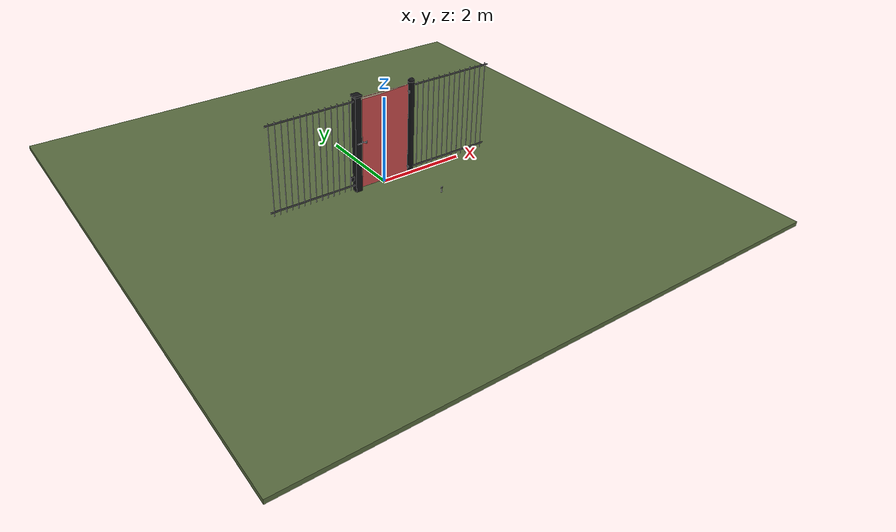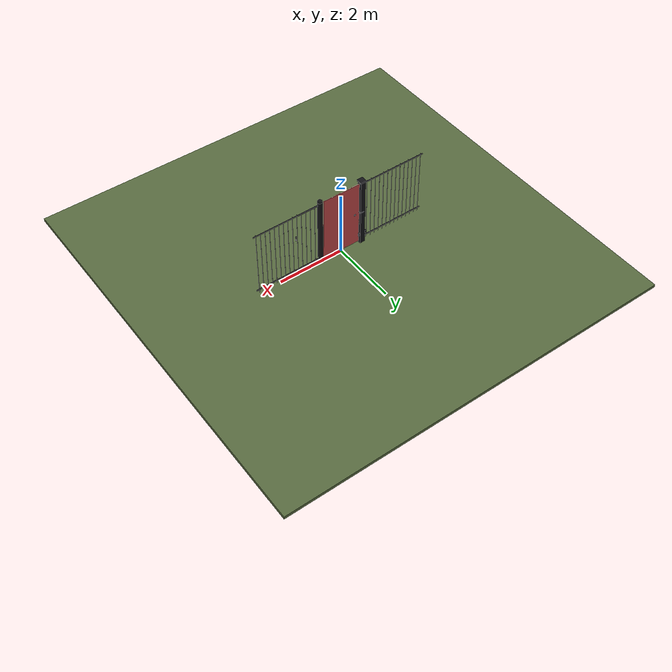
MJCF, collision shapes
<?xml version="1.0" ?>
<mujoco model="db0784_gate_swing_full">
  <compiler angle="radian" meshdir="../../hardware" texturedir="../../textures" autolimits="true" inertiafromgeom="false"/>
  <option timestep="0.002" integrator="implicitfast" cone="elliptic" impratio="10" noslip_iterations="3">
    <flag multiccd="enable"/>
  </option>
  <size memory="16M"/>
  <default>
    <geom condim="4" solref="0.005 1" solimp="0.95 0.99 0.001"/>
    <joint solreflimit="0.005 1" solimplimit="0.95 0.99 0.001"/>
    <tendon solreflimit="0.005 1"/>
    <equality solref="0.002 1"/>
  </default>
  <visual>
    <headlight ambient="0.4 0.4 0.4" diffuse="0.7 0.7 0.7" specular="0.2 0.2 0.2"/>
    <quality shadowsize="4096"/>
    <map znear="0.01" zfar="60"/>
  </visual>
  <asset>
    <mesh name="strap_hinge_78d1bbb966" file="strap_hinge_78d1bbb966.obj"/>
    <material name="mat_floor" rgba="0.35 0.42 0.25 1" specular="0.2" shininess="0.15" reflectance="0"/>
    <material name="mat_wall" rgba="0.78 0.76 0.7 1" specular="0.2" shininess="0.1" reflectance="0"/>
    <material name="mat_leaf" rgba="0.82 0.75 0.62 1" specular="0.23" shininess="0.38" reflectance="0.02"/>
    <material name="mat_hinge" rgba="0.65 0.66 0.68 1" specular="0.74" shininess="0.5" reflectance="0.36"/>
    <material name="mat_op_steel_galvanized" rgba="0.65 0.66 0.68 1" specular="0.74" shininess="0.5" reflectance="0.36"/>
    <material name="mat_frame" rgba="0.08 0.08 0.09 1" specular="0.56" shininess="0.25" reflectance="0.24"/>
    <material name="mat_bumper_stop" rgba="0.08 0.08 0.08 1" specular="0.2" shininess="0.1" reflectance="0"/>
    <material name="mat_stop_base" rgba="0.9 0.9 0.92 1" specular="0.8" shininess="0.9" reflectance="0.4"/>
    <texture name="skybox" type="skybox" builtin="gradient" rgb1="0.6 0.7 0.85" rgb2="0.9 0.92 0.95" width="256" height="256"/>
  </asset>
  <worldbody>
    <light name="sun" pos="1.5 -2.5 4" dir="-0.3 0.5 -0.8" directional="true" diffuse="0.8 0.8 0.8" specular="0.3 0.3 0.3" castshadow="true"/>
    <light name="fill" pos="-1.5 2.5 3" dir="0.3 -0.5 -0.7" directional="true" diffuse="0.35 0.35 0.4" castshadow="false"/>
    <camera name="robot_view" pos="0 -2.6125 1.7915" xyaxes="1 0 0 0 0.26963 0.962964" fovy="52"/>
    <camera name="far_view" pos="0 2.6125 1.7915" xyaxes="-1 0 0 0 -0.26963 0.962964" fovy="52"/>
    <camera name="iso" pos="-1.9855 -2.1945 2.2095" xyaxes="0.741536 -0.670913 0 0.242917 0.268487 0.932151" fovy="46"/>
    <camera name="detail_handle" pos="-0.406 -0.8245 1.485" xyaxes="0.97561 0.219512 0 -0.070934 0.315262 0.94635" fovy="38"/>
    <geom name="floor" type="box" size="6 6 0.05" pos="0 0 -0.05" material="mat_floor" group="0" contype="1" conaffinity="1" friction="0.8 0.005 0.0001" density="2400"/>
    <geom name="hinge_pintle_0" type="cylinder" size="0.008 0.02" pos="0.603 -0.05 0.174" material="mat_hinge" group="1" contype="0" conaffinity="0" density="7850"/>
    <geom name="hinge_pintle_1" type="cylinder" size="0.008 0.02" pos="0.603 -0.05 1.974" material="mat_hinge" group="1" contype="0" conaffinity="0" density="7850"/>
    <geom name="post_hinge" type="cylinder" size="0.075 1.1" pos="0.681 0 1.1" material="mat_frame" group="0" contype="1" conaffinity="1" friction="0.6 0.005 0.0001" density="800"/>
    <geom name="post_hinge_cap" type="sphere" size="0.075" pos="0.681 0 2.2" material="mat_frame" group="1" contype="0" conaffinity="0" density="800"/>
    <geom name="post_latch" type="box" size="0.075 0.075 1.1" pos="-0.681 0 1.1" material="mat_frame" group="0" contype="1" conaffinity="1" friction="0.6 0.005 0.0001" density="800"/>
    <geom name="post_latch_cap" type="box" size="0.09 0.09 0.02" pos="-0.681 0 2.22" material="mat_frame" group="1" contype="0" conaffinity="0" density="800"/>
    <geom name="gate_stop" type="box" size="0.02 0.012 0.06" pos="-0.586 0.0245 0.3" material="mat_frame" group="0" contype="1" conaffinity="1" friction="0.6 0.005 0.0001" density="800"/>
    <geom name="door_stop_base" type="cylinder" size="0.022 0.003" pos="0.765841 -1.057022 0.003" material="mat_stop_base" group="0" contype="1" conaffinity="1" friction="0.6 0.005 0.0001" density="7850"/>
    <geom name="door_stop_post" type="cylinder" size="0.012 0.042" pos="0.765841 -1.057022 0.048" material="mat_stop_base" group="0" contype="1" conaffinity="1" friction="0.6 0.005 0.0001" density="7850"/>
    <geom name="door_stop_bumper" type="cylinder" size="0.022 0.02" pos="0.765841 -1.057022 0.11" material="mat_bumper_stop" group="0" contype="1" conaffinity="1" friction="0.6 0.005 0.0001" density="1100"/>
    <geom name="fence_bar_l_0" type="cylinder" size="0.008 1.05" pos="-0.856 0 1.1" material="mat_frame" group="0" contype="1" conaffinity="1" friction="0.6 0.005 0.0001" density="7850"/>
    <geom name="fence_bar_l_1" type="cylinder" size="0.008 1.05" pos="-0.996 0 1.1" material="mat_frame" group="0" contype="1" conaffinity="1" friction="0.6 0.005 0.0001" density="7850"/>
    <geom name="fence_bar_l_2" type="cylinder" size="0.008 1.05" pos="-1.136 0 1.1" material="mat_frame" group="0" contype="1" conaffinity="1" friction="0.6 0.005 0.0001" density="7850"/>
    <geom name="fence_bar_l_3" type="cylinder" size="0.008 1.05" pos="-1.276 0 1.1" material="mat_frame" group="0" contype="1" conaffinity="1" friction="0.6 0.005 0.0001" density="7850"/>
    <geom name="fence_bar_l_4" type="cylinder" size="0.008 1.05" pos="-1.416 0 1.1" material="mat_frame" group="0" contype="1" conaffinity="1" friction="0.6 0.005 0.0001" density="7850"/>
    <geom name="fence_bar_l_5" type="cylinder" size="0.008 1.05" pos="-1.556 0 1.1" material="mat_frame" group="0" contype="1" conaffinity="1" friction="0.6 0.005 0.0001" density="7850"/>
    <geom name="fence_bar_l_6" type="cylinder" size="0.008 1.05" pos="-1.696 0 1.1" material="mat_frame" group="0" contype="1" conaffinity="1" friction="0.6 0.005 0.0001" density="7850"/>
    <geom name="fence_bar_l_7" type="cylinder" size="0.008 1.05" pos="-1.836 0 1.1" material="mat_frame" group="0" contype="1" conaffinity="1" friction="0.6 0.005 0.0001" density="7850"/>
    <geom name="fence_bar_l_8" type="cylinder" size="0.008 1.05" pos="-1.976 0 1.1" material="mat_frame" group="0" contype="1" conaffinity="1" friction="0.6 0.005 0.0001" density="7850"/>
    <geom name="fence_bar_l_9" type="cylinder" size="0.008 1.05" pos="-2.116 0 1.1" material="mat_frame" group="0" contype="1" conaffinity="1" friction="0.6 0.005 0.0001" density="7850"/>
    <geom name="fence_bar_l_10" type="cylinder" size="0.008 1.05" pos="-2.256 0 1.1" material="mat_frame" group="0" contype="1" conaffinity="1" friction="0.6 0.005 0.0001" density="7850"/>
    <geom name="fence_bar_l_11" type="cylinder" size="0.008 1.05" pos="-2.396 0 1.1" material="mat_frame" group="0" contype="1" conaffinity="1" friction="0.6 0.005 0.0001" density="7850"/>
    <geom name="fence_bar_l_12" type="cylinder" size="0.008 1.05" pos="-2.536 0 1.1" material="mat_frame" group="0" contype="1" conaffinity="1" friction="0.6 0.005 0.0001" density="7850"/>
    <geom name="fence_bar_l_13" type="cylinder" size="0.008 1.05" pos="-2.676 0 1.1" material="mat_frame" group="0" contype="1" conaffinity="1" friction="0.6 0.005 0.0001" density="7850"/>
    <geom name="fence_rail_l" type="box" size="1 0.012 0.012" pos="-1.756 0 2.1" material="mat_frame" group="0" contype="1" conaffinity="1" friction="0.6 0.005 0.0001" density="7850"/>
    <geom name="fence_rail_b_l" type="box" size="1 0.012 0.012" pos="-1.756 0 0.15" material="mat_frame" group="0" contype="1" conaffinity="1" friction="0.6 0.005 0.0001" density="7850"/>
    <geom name="fence_bar_r_0" type="cylinder" size="0.008 1.05" pos="0.856 0 1.1" material="mat_frame" group="0" contype="1" conaffinity="1" friction="0.6 0.005 0.0001" density="7850"/>
    <geom name="fence_bar_r_1" type="cylinder" size="0.008 1.05" pos="0.996 0 1.1" material="mat_frame" group="0" contype="1" conaffinity="1" friction="0.6 0.005 0.0001" density="7850"/>
    <geom name="fence_bar_r_2" type="cylinder" size="0.008 1.05" pos="1.136 0 1.1" material="mat_frame" group="0" contype="1" conaffinity="1" friction="0.6 0.005 0.0001" density="7850"/>
    <geom name="fence_bar_r_3" type="cylinder" size="0.008 1.05" pos="1.276 0 1.1" material="mat_frame" group="0" contype="1" conaffinity="1" friction="0.6 0.005 0.0001" density="7850"/>
    <geom name="fence_bar_r_4" type="cylinder" size="0.008 1.05" pos="1.416 0 1.1" material="mat_frame" group="0" contype="1" conaffinity="1" friction="0.6 0.005 0.0001" density="7850"/>
    <geom name="fence_bar_r_5" type="cylinder" size="0.008 1.05" pos="1.556 0 1.1" material="mat_frame" group="0" contype="1" conaffinity="1" friction="0.6 0.005 0.0001" density="7850"/>
    <geom name="fence_bar_r_6" type="cylinder" size="0.008 1.05" pos="1.696 0 1.1" material="mat_frame" group="0" contype="1" conaffinity="1" friction="0.6 0.005 0.0001" density="7850"/>
    <geom name="fence_bar_r_7" type="cylinder" size="0.008 1.05" pos="1.836 0 1.1" material="mat_frame" group="0" contype="1" conaffinity="1" friction="0.6 0.005 0.0001" density="7850"/>
    <geom name="fence_bar_r_8" type="cylinder" size="0.008 1.05" pos="1.976 0 1.1" material="mat_frame" group="0" contype="1" conaffinity="1" friction="0.6 0.005 0.0001" density="7850"/>
    <geom name="fence_bar_r_9" type="cylinder" size="0.008 1.05" pos="2.116 0 1.1" material="mat_frame" group="0" contype="1" conaffinity="1" friction="0.6 0.005 0.0001" density="7850"/>
    <geom name="fence_bar_r_10" type="cylinder" size="0.008 1.05" pos="2.256 0 1.1" material="mat_frame" group="0" contype="1" conaffinity="1" friction="0.6 0.005 0.0001" density="7850"/>
    <geom name="fence_bar_r_11" type="cylinder" size="0.008 1.05" pos="2.396 0 1.1" material="mat_frame" group="0" contype="1" conaffinity="1" friction="0.6 0.005 0.0001" density="7850"/>
    <geom name="fence_bar_r_12" type="cylinder" size="0.008 1.05" pos="2.536 0 1.1" material="mat_frame" group="0" contype="1" conaffinity="1" friction="0.6 0.005 0.0001" density="7850"/>
    <geom name="fence_bar_r_13" type="cylinder" size="0.008 1.05" pos="2.676 0 1.1" material="mat_frame" group="0" contype="1" conaffinity="1" friction="0.6 0.005 0.0001" density="7850"/>
    <geom name="fence_rail_r" type="box" size="1 0.012 0.012" pos="1.756 0 2.1" material="mat_frame" group="0" contype="1" conaffinity="1" friction="0.6 0.005 0.0001" density="7850"/>
    <geom name="fence_rail_b_r" type="box" size="1 0.012 0.012" pos="1.756 0 0.15" material="mat_frame" group="0" contype="1" conaffinity="1" friction="0.6 0.005 0.0001" density="7850"/>
    <geom name="gate_stop_strap_0" type="box" size="0.1215 0.01505 0.048" pos="-0.727 0.01905 0.3" material="mat_frame" group="1" contype="0" conaffinity="0" density="7850"/>
    <site name="approach_point" pos="0 -1.5 0" quat="1 0 0 0" size="0.05" rgba="0.2 0.9 0.2 0.5" group="4"/>
    <site name="goal_point" pos="0 1.5 0" quat="1 0 0 0" size="0.05" rgba="0.2 0.9 0.2 0.5" group="4"/>
    <site name="door_plane_center" pos="0 0 1.06" quat="1 0 0 0" size="0.02" rgba="0.2 0.9 0.2 0.5" group="4"/>
    <body name="leaf" pos="0.606 0 0">
      <inertial pos="-0.590556 -0.000564 1.1" mass="72.394237" quat="0.500547 0.499453 -0.500547 0.499453" diaginertia="8.931584314 27.472282214 36.39451128"/>
      <joint name="leaf_hinge" type="hinge" axis="0 0 1" pos="-0.003 -0.05 0" limited="true" range="0 1.745329" damping="0.836434" frictionloss="4.395914" armature="0.02"/>
      <geom name="leaf_slab_col" type="box" size="0.6 0.0125 1.05" pos="-0.603 0 1.1" material="mat_leaf" group="3" contype="1" conaffinity="1" rgba="0.8 0.3 0.3 0.25" friction="0.45 0.005 0.0001" density="1"/>
      <geom name="leaf_rail_b" type="box" size="0.6 0.0125 0.0225" pos="-0.603 0 0.0725" material="mat_leaf" group="1" contype="0" conaffinity="0" density="1"/>
      <geom name="leaf_rail_t" type="box" size="0.6 0.0125 0.0225" pos="-0.603 0 2.1275" material="mat_leaf" group="1" contype="0" conaffinity="0" density="1"/>
      <geom name="leaf_stile_h" type="box" size="0.0225 0.0125 1.05" pos="-0.0255 0 1.1" material="mat_leaf" group="1" contype="0" conaffinity="0" density="1"/>
      <geom name="leaf_stile_l" type="box" size="0.0225 0.0125 1.05" pos="-1.1805 0 1.1" material="mat_leaf" group="1" contype="0" conaffinity="0" density="1"/>
      <geom name="leaf_bar_0" type="cylinder" size="0.0095 1.005" pos="-0.117375 0 1.1" material="mat_leaf" group="1" contype="0" conaffinity="0" density="1"/>
      <geom name="leaf_bar_1" type="cylinder" size="0.0095 1.005" pos="-0.256125 0 1.1" material="mat_leaf" group="1" contype="0" conaffinity="0" density="1"/>
      <geom name="leaf_bar_2" type="cylinder" size="0.0095 1.005" pos="-0.394875 0 1.1" material="mat_leaf" group="1" contype="0" conaffinity="0" density="1"/>
      <geom name="leaf_bar_3" type="cylinder" size="0.0095 1.005" pos="-0.533625 0 1.1" material="mat_leaf" group="1" contype="0" conaffinity="0" density="1"/>
      <geom name="leaf_bar_4" type="cylinder" size="0.0095 1.005" pos="-0.672375 0 1.1" material="mat_leaf" group="1" contype="0" conaffinity="0" density="1"/>
      <geom name="leaf_bar_5" type="cylinder" size="0.0095 1.005" pos="-0.811125 0 1.1" material="mat_leaf" group="1" contype="0" conaffinity="0" density="1"/>
      <geom name="leaf_bar_6" type="cylinder" size="0.0095 1.005" pos="-0.949875 0 1.1" material="mat_leaf" group="1" contype="0" conaffinity="0" density="1"/>
      <geom name="leaf_bar_7" type="cylinder" size="0.0095 1.005" pos="-1.088625 0 1.1" material="mat_leaf" group="1" contype="0" conaffinity="0" density="1"/>
      <geom name="hinge_strap_0" type="mesh" mesh="strap_hinge_78d1bbb966" pos="-0.003 -0.0155 0.2" quat="0 0 0 1" material="mat_hinge" group="1" contype="0" conaffinity="0" density="7850"/>
      <geom name="hinge_strap_eye_0" type="cylinder" size="0.011 0.012" pos="-0.003 -0.05 0.2" material="mat_hinge" group="1" contype="0" conaffinity="0" density="7850"/>
      <geom name="hinge_strap_neck_0" type="box" size="0.012 0.02125 0.006" pos="-0.003 -0.03275 0.2" material="mat_hinge" group="1" contype="0" conaffinity="0" density="7850"/>
      <geom name="hinge_strap_1" type="mesh" mesh="strap_hinge_78d1bbb966" pos="-0.003 -0.0155 2" quat="0 0 0 1" material="mat_hinge" group="1" contype="0" conaffinity="0" density="7850"/>
      <geom name="hinge_strap_eye_1" type="cylinder" size="0.011 0.012" pos="-0.003 -0.05 2" material="mat_hinge" group="1" contype="0" conaffinity="0" density="7850"/>
      <geom name="hinge_strap_neck_1" type="box" size="0.012 0.02125 0.006" pos="-0.003 -0.03275 2" material="mat_hinge" group="1" contype="0" conaffinity="0" density="7850"/>
      <geom name="leaf_fork_strap_n" type="box" size="0.02 0.002 0.03" pos="-1.063 -0.0145 1.1" material="mat_op_steel_galvanized" group="1" contype="0" conaffinity="0" density="7800"/>
      <geom name="leaf_fork_strap_p" type="box" size="0.02 0.002 0.03" pos="-1.063 0.0145 1.1" material="mat_op_steel_galvanized" group="1" contype="0" conaffinity="0" density="7800"/>
      <geom name="leaf_fork_pin" type="cylinder" size="0.005 0.0245" pos="-1.063 -0.008 1.1" quat="0.707107 -0.707107 0 0" material="mat_op_steel_galvanized" group="1" contype="0" conaffinity="0" density="7800"/>
      <site name="leaf_edge_mid" pos="-1.203 0 1.05" quat="1 0 0 0" size="0.02" rgba="0.2 0.9 0.2 0.5" group="4"/>
      <body name="leaf_fork" pos="-1.063 0 1.1">
        <inertial pos="-0.126594 -0.008623 0.042319" mass="0.267763" quat="0.971199 -0.024043 0.108413 -0.210811" diaginertia="0.000863922 0.001265656 0.002030125"/>
        <joint name="leaf_fork_hinge" type="hinge" axis="0 1 0" limited="true" range="0 1.2" damping="0.049205" frictionloss="0.008804" armature="0.0001"/>
        <geom name="leaf_fork_arm" type="box" size="0.069176 0.004 0.012" pos="-0.0645 -0.0245 0.025" quat="0.982958 0 0.183833 0" material="mat_op_steel_galvanized" group="0" contype="1" conaffinity="1" friction="0.6 0.005 0.0001" density="2500"/>
        <geom name="leaf_fork_eye" type="cylinder" size="0.014 0.005" pos="0 -0.0245 0" quat="0.707107 -0.707107 0 0" material="mat_op_steel_galvanized" group="1" contype="0" conaffinity="0" density="2500"/>
        <geom name="leaf_fork_tine_n" type="box" size="0.0625 0.003 0.012" pos="-0.1915 -0.084 0.05" material="mat_op_steel_galvanized" group="0" contype="1" conaffinity="1" friction="0.6 0.005 0.0001" density="2500"/>
        <geom name="leaf_fork_tine_p" type="box" size="0.0625 0.003 0.012" pos="-0.1915 0.084 0.05" material="mat_op_steel_galvanized" group="0" contype="1" conaffinity="1" friction="0.6 0.005 0.0001" density="2500"/>
        <geom name="leaf_fork_bridge" type="box" size="0.004 0.087 0.012" pos="-0.129 0 0.05" material="mat_op_steel_galvanized" group="0" contype="1" conaffinity="1" friction="0.6 0.005 0.0001" density="2500"/>
        <geom name="leaf_fork_handle" type="capsule" size="0.006 0.018" pos="-0.129 -0.0245 0.08" material="mat_op_steel_galvanized" group="0" contype="1" conaffinity="1" friction="0.7 0.01 0.0001" density="2500"/>
        <site name="leaf_fork_grip" pos="-0.129 -0.0245 0.105" quat="1 0 0 0" size="0.012" rgba="0.2 0.9 0.2 0.5" group="4"/>
      </body>
    </body>
  </worldbody>
  <sensor>
    <jointpos name="leaf_hinge_pos" joint="leaf_hinge"/>
    <jointvel name="leaf_hinge_vel" joint="leaf_hinge"/>
    <jointpos name="leaf_fork_hinge_pos" joint="leaf_fork_hinge"/>
    <jointvel name="leaf_fork_hinge_vel" joint="leaf_fork_hinge"/>
  </sensor>
</mujoco>
